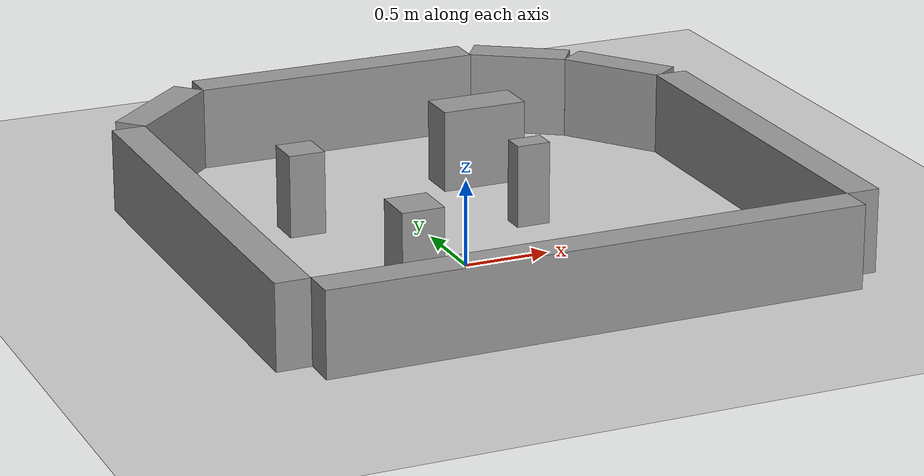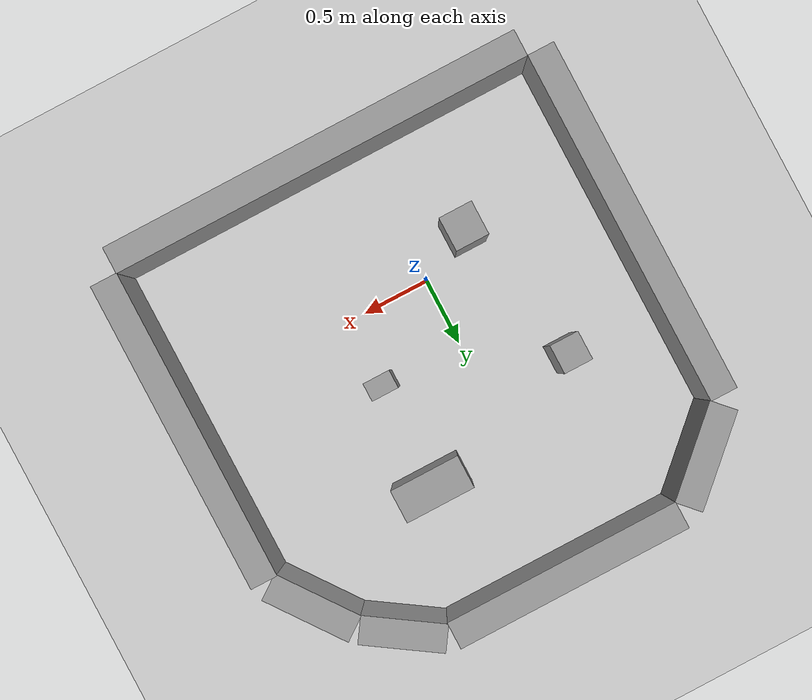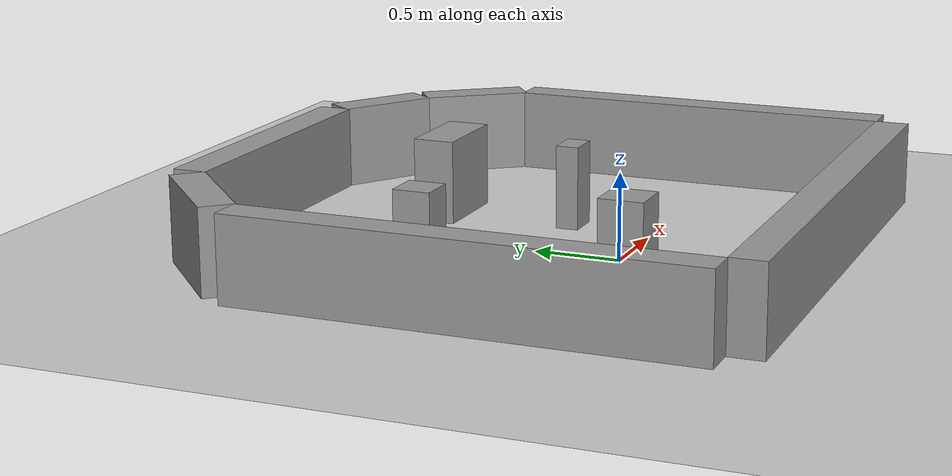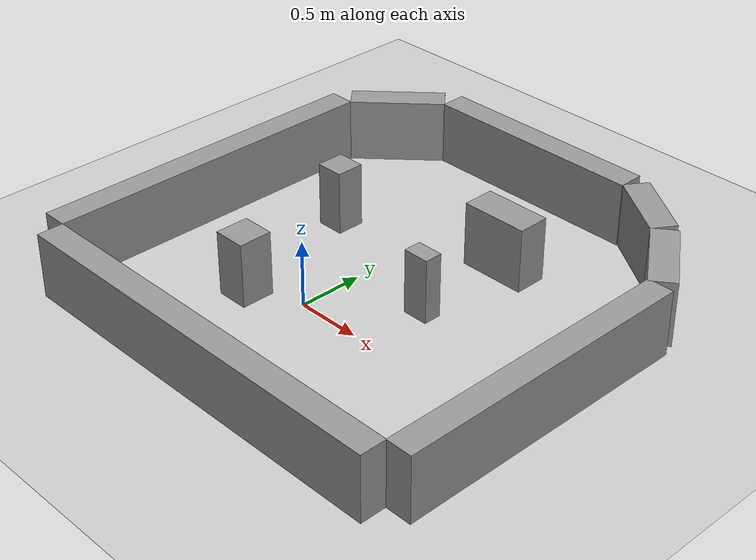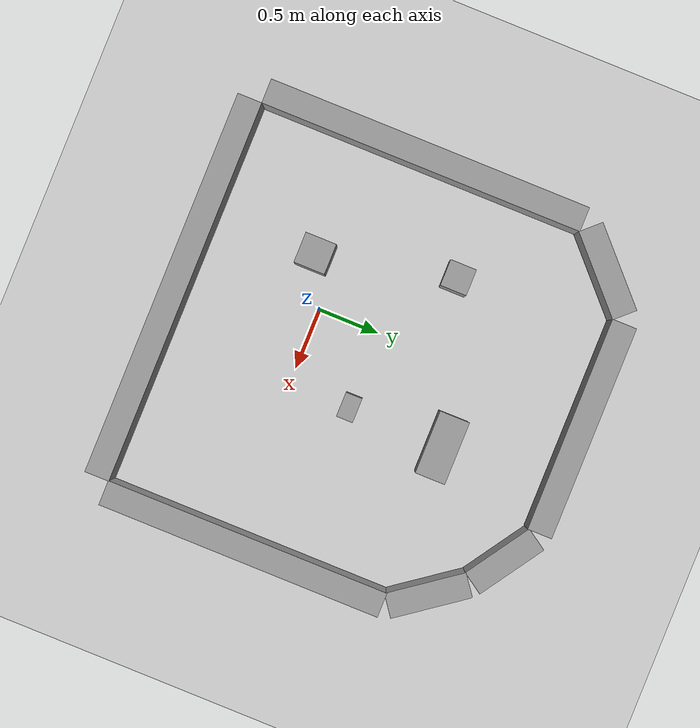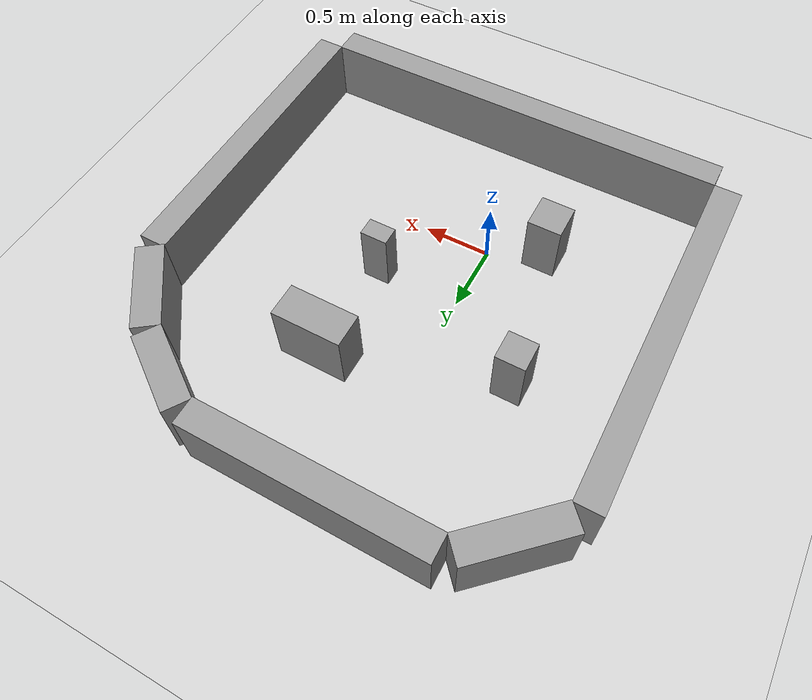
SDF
<sdf version="1.7">
 <world name="default">
  <model name="ground_plane">
   <static>1</static>
   <link name="link">
    <collision name="collision">
     <geometry><plane><normal>0 0 1</normal><size>100 100</size></plane></geometry>
     <surface>
      <contact><collide_bitmask>65535</collide_bitmask></contact>
      <friction><ode><mu>100</mu><mu2>50</mu2></ode></friction>
     </surface>
    </collision>
    <visual name="visual">
     <cast_shadows>0</cast_shadows>
     <geometry><plane><normal>0 0 1</normal><size>100 100</size></plane></geometry>
     <material>
      <script><uri>file://media/materials/scripts/gazebo.material</uri><name>Gazebo/Grey</name></script>
     </material>
    </visual>
   </link>
  </model>
  <gravity>0 0 -9.8</gravity>
  <magnetic_field>6e-06 2.3e-05 -4.2e-05</magnetic_field>
  <atmosphere type="adiabatic"/>
  <physics type="ode">
   <max_step_size>0.001</max_step_size>
   <real_time_factor>1</real_time_factor>
   <real_time_update_rate>1000</real_time_update_rate>
  </physics>
  <scene><ambient>0.4 0.4 0.4 1</ambient><background>0.7 0.7 0.7 1</background><shadows>1</shadows></scene>
  <spherical_coordinates>
   <surface_model>EARTH_WGS84</surface_model>
   <latitude_deg>0</latitude_deg>
   <longitude_deg>0</longitude_deg>
   <elevation>0</elevation>
   <heading_deg>0</heading_deg>
  </spherical_coordinates>
  <light name="sun" type="directional">
   <pose>-8.52777 3.22509 10 0 -0 0</pose>
   <diffuse>0.8 0.8 0.8 1</diffuse>
   <specular>0.2 0.2 0.2 1</specular>
   <attenuation>
    <range>1000</range>
    <constant>0.9</constant>
    <linear>0.01</linear>
    <quadratic>0.001</quadratic>
   </attenuation>
   <direction>-0.5 0.1 -0.9</direction>
   <spot><inner_angle>0</inner_angle><outer_angle>0</outer_angle><falloff>0</falloff></spot>
  </light>
  <plugin name="collision_map_creator" filename="build/libcollision_map_creator.so"/>
  <model name="SztakiFull_without_0">
   <link name="link_0">
    <inertial>
     <mass>1</mass>
     <inertia>
      <ixx>0.166667</ixx>
      <ixy>0</ixy>
      <ixz>0</ixz>
      <iyy>0.166667</iyy>
      <iyz>0</iyz>
      <izz>0.166667</izz>
     </inertia>
    </inertial>
    <pose>-1.78542 -0.681461 -0.001058 0 0 -1.5708</pose>
    <visual name="visual">
     <geometry><box><size>2.65 0.2 0.5</size></box></geometry>
     <material>
      <lighting>1</lighting>
      <script><uri>file://media/materials/scripts/gazebo.material</uri><name>Gazebo/Grey</name></script>
      <shader type="pixel"><normal_map>__default__</normal_map></shader>
      <ambient>0.3 0.3 0.3 1</ambient>
      <diffuse>0.7 0.7 0.7 1</diffuse>
      <specular>0.01 0.01 0.01 1</specular>
      <emissive>0 0 0 1</emissive>
     </material>
    </visual>
    <collision name="collision">
     <geometry><box><size>2.65 0.2 0.5</size></box></geometry>
     <surface>
      <friction>
       <ode><mu>1</mu><mu2>1</mu2><fdir1>0 0 0</fdir1><slip1>0</slip1><slip2>0</slip2></ode>
       <torsional>
        <coefficient>1</coefficient>
        <patch_radius>0</patch_radius>
        <surface_radius>0</surface_radius>
        <use_patch_radius>1</use_patch_radius>
        <ode><slip>0</slip></ode>
       </torsional>
      </friction>
      <bounce><restitution_coefficient>0</restitution_coefficient><threshold>1e+06</threshold></bounce>
      <contact>
       <collide_without_contact>0</collide_without_contact>
       <collide_without_contact_bitmask>1</collide_without_contact_bitmask>
       <collide_bitmask>1</collide_bitmask>
       <ode>
        <soft_cfm>0</soft_cfm>
        <soft_erp>0.2</soft_erp>
        <kp>1e+13</kp>
        <kd>1</kd>
        <max_vel>0.01</max_vel>
        <min_depth>0</min_depth>
       </ode>
       <bullet>
        <split_impulse>1</split_impulse>
        <split_impulse_penetration_threshold>-0.01</split_impulse_penetration_threshold>
        <soft_cfm>0</soft_cfm>
        <soft_erp>0.2</soft_erp>
        <kp>1e+13</kp>
        <kd>1</kd>
       </bullet>
      </contact>
     </surface>
    </collision>
   </link>
   <link name="link_0_clone">
    <inertial>
     <mass>1</mass>
     <inertia>
      <ixx>0.166667</ixx>
      <ixy>0</ixy>
      <ixz>0</ixz>
      <iyy>0.166667</iyy>
      <iyz>0</iyz>
      <izz>0.166667</izz>
     </inertia>
    </inertial>
    <pose>-0.11042 -2.10451 0.000176 0 -0 0</pose>
    <visual name="visual">
     <geometry><box><size>3.15 0.2 0.5</size></box></geometry>
     <material>
      <lighting>1</lighting>
      <script><uri>file://media/materials/scripts/gazebo.material</uri><name>Gazebo/Grey</name></script>
      <shader type="pixel"><normal_map>__default__</normal_map></shader>
      <ambient>0.3 0.3 0.3 1</ambient>
      <diffuse>0.7 0.7 0.7 1</diffuse>
      <specular>0.01 0.01 0.01 1</specular>
      <emissive>0 0 0 1</emissive>
     </material>
    </visual>
    <collision name="collision">
     <geometry><box><size>3.15 0.2 0.5</size></box></geometry>
     <surface>
      <friction>
       <ode><mu>1</mu><mu2>1</mu2><fdir1>0 0 0</fdir1><slip1>0</slip1><slip2>0</slip2></ode>
       <torsional>
        <coefficient>1</coefficient>
        <patch_radius>0</patch_radius>
        <surface_radius>0</surface_radius>
        <use_patch_radius>1</use_patch_radius>
        <ode><slip>0</slip></ode>
       </torsional>
      </friction>
      <bounce><restitution_coefficient>0</restitution_coefficient><threshold>1e+06</threshold></bounce>
      <contact>
       <collide_without_contact>0</collide_without_contact>
       <collide_without_contact_bitmask>1</collide_without_contact_bitmask>
       <collide_bitmask>1</collide_bitmask>
       <ode>
        <soft_cfm>0</soft_cfm>
        <soft_erp>0.2</soft_erp>
        <kp>1e+13</kp>
        <kd>1</kd>
        <max_vel>0.01</max_vel>
        <min_depth>0</min_depth>
       </ode>
       <bullet>
        <split_impulse>1</split_impulse>
        <split_impulse_penetration_threshold>-0.01</split_impulse_penetration_threshold>
        <soft_cfm>0</soft_cfm>
        <soft_erp>0.2</soft_erp>
        <kp>1e+13</kp>
        <kd>1</kd>
       </bullet>
      </contact>
     </surface>
    </collision>
   </link>
   <link name="link_0_clone_0_clone">
    <inertial>
     <mass>1</mass>
     <inertia>
      <ixx>0.166667</ixx>
      <ixy>0</ixy>
      <ixz>0</ixz>
      <iyy>0.166667</iyy>
      <iyz>0</iyz>
      <izz>0.166667</izz>
     </inertia>
    </inertial>
    <pose>0.240419 -0.497488 -0.001058 0 0 -1.5708</pose>
    <visual name="visual">
     <geometry><box><size>0.135 0.2 0.5</size></box></geometry>
     <material>
      <lighting>1</lighting>
      <script><uri>file://media/materials/scripts/gazebo.material</uri><name>Gazebo/Grey</name></script>
      <shader type="pixel"><normal_map>__default__</normal_map></shader>
      <ambient>0.3 0.3 0.3 1</ambient>
      <diffuse>0.7 0.7 0.7 1</diffuse>
      <specular>0.01 0.01 0.01 1</specular>
      <emissive>0 0 0 1</emissive>
     </material>
    </visual>
    <collision name="collision">
     <geometry><box><size>0.135 0.2 0.5</size></box></geometry>
     <surface>
      <friction>
       <ode><mu>1</mu><mu2>1</mu2><fdir1>0 0 0</fdir1><slip1>0</slip1><slip2>0</slip2></ode>
       <torsional>
        <coefficient>1</coefficient>
        <patch_radius>0</patch_radius>
        <surface_radius>0</surface_radius>
        <use_patch_radius>1</use_patch_radius>
        <ode><slip>0</slip></ode>
       </torsional>
      </friction>
      <bounce><restitution_coefficient>0</restitution_coefficient><threshold>1e+06</threshold></bounce>
      <contact>
       <collide_without_contact>0</collide_without_contact>
       <collide_without_contact_bitmask>1</collide_without_contact_bitmask>
       <collide_bitmask>1</collide_bitmask>
       <ode>
        <soft_cfm>0</soft_cfm>
        <soft_erp>0.2</soft_erp>
        <kp>1e+13</kp>
        <kd>1</kd>
        <max_vel>0.01</max_vel>
        <min_depth>0</min_depth>
       </ode>
       <bullet>
        <split_impulse>1</split_impulse>
        <split_impulse_penetration_threshold>-0.01</split_impulse_penetration_threshold>
        <soft_cfm>0</soft_cfm>
        <soft_erp>0.2</soft_erp>
        <kp>1e+13</kp>
        <kd>1</kd>
       </bullet>
      </contact>
     </surface>
    </collision>
   </link>
   <link name="link_0_clone_0_clone_0">
    <inertial>
     <mass>1</mass>
     <inertia>
      <ixx>0.166667</ixx>
      <ixy>0</ixy>
      <ixz>0</ixz>
      <iyy>0.166667</iyy>
      <iyz>0</iyz>
      <izz>0.166667</izz>
     </inertia>
    </inertial>
    <pose>-0.76421 -1.18838 -0.001058 0 0 -1.5708</pose>
    <visual name="visual">
     <geometry><box><size>0.255 0.25 0.5</size></box></geometry>
     <material>
      <lighting>1</lighting>
      <script><uri>file://media/materials/scripts/gazebo.material</uri><name>Gazebo/Grey</name></script>
      <shader type="pixel"><normal_map>__default__</normal_map></shader>
      <ambient>0.3 0.3 0.3 1</ambient>
      <diffuse>0.7 0.7 0.7 1</diffuse>
      <specular>0.01 0.01 0.01 1</specular>
      <emissive>0 0 0 1</emissive>
     </material>
    </visual>
    <collision name="collision">
     <geometry><box><size>0.255 0.25 0.5</size></box></geometry>
     <surface>
      <friction>
       <ode><mu>1</mu><mu2>1</mu2><fdir1>0 0 0</fdir1><slip1>0</slip1><slip2>0</slip2></ode>
       <torsional>
        <coefficient>1</coefficient>
        <patch_radius>0</patch_radius>
        <surface_radius>0</surface_radius>
        <use_patch_radius>1</use_patch_radius>
        <ode><slip>0</slip></ode>
       </torsional>
      </friction>
      <bounce><restitution_coefficient>0</restitution_coefficient><threshold>1e+06</threshold></bounce>
      <contact>
       <collide_without_contact>0</collide_without_contact>
       <collide_without_contact_bitmask>1</collide_without_contact_bitmask>
       <collide_bitmask>1</collide_bitmask>
       <ode>
        <soft_cfm>0</soft_cfm>
        <soft_erp>0.2</soft_erp>
        <kp>1e+13</kp>
        <kd>1</kd>
        <max_vel>0.01</max_vel>
        <min_depth>0</min_depth>
       </ode>
       <bullet>
        <split_impulse>1</split_impulse>
        <split_impulse_penetration_threshold>-0.01</split_impulse_penetration_threshold>
        <soft_cfm>0</soft_cfm>
        <soft_erp>0.2</soft_erp>
        <kp>1e+13</kp>
        <kd>1</kd>
       </bullet>
      </contact>
     </surface>
    </collision>
   </link>
   <link name="link_0_clone_0_clone_1">
    <inertial>
     <mass>1</mass>
     <inertia>
      <ixx>0.166667</ixx>
      <ixy>0</ixy>
      <ixz>0</ixz>
      <iyy>0.166667</iyy>
      <iyz>0</iyz>
      <izz>0.166667</izz>
     </inertia>
    </inertial>
    <pose>-1.00514 -0.0923 -0.001058 0 0 -1.5708</pose>
    <visual name="visual">
     <geometry><box><size>0.215 0.215 0.5</size></box></geometry>
     <material>
      <lighting>1</lighting>
      <script><uri>file://media/materials/scripts/gazebo.material</uri><name>Gazebo/Grey</name></script>
      <shader type="pixel"><normal_map>__default__</normal_map></shader>
      <ambient>0.3 0.3 0.3 1</ambient>
      <diffuse>0.7 0.7 0.7 1</diffuse>
      <specular>0.01 0.01 0.01 1</specular>
      <emissive>0 0 0 1</emissive>
     </material>
    </visual>
    <collision name="collision">
     <geometry><box><size>0.215 0.215 0.5</size></box></geometry>
     <surface>
      <friction>
       <ode><mu>1</mu><mu2>1</mu2><fdir1>0 0 0</fdir1><slip1>0</slip1><slip2>0</slip2></ode>
       <torsional>
        <coefficient>1</coefficient>
        <patch_radius>0</patch_radius>
        <surface_radius>0</surface_radius>
        <use_patch_radius>1</use_patch_radius>
        <ode><slip>0</slip></ode>
       </torsional>
      </friction>
      <bounce><restitution_coefficient>0</restitution_coefficient><threshold>1e+06</threshold></bounce>
      <contact>
       <collide_without_contact>0</collide_without_contact>
       <collide_without_contact_bitmask>1</collide_without_contact_bitmask>
       <collide_bitmask>1</collide_bitmask>
       <ode>
        <soft_cfm>0</soft_cfm>
        <soft_erp>0.2</soft_erp>
        <kp>1e+13</kp>
        <kd>1</kd>
        <max_vel>0.01</max_vel>
        <min_depth>0</min_depth>
       </ode>
       <bullet>
        <split_impulse>1</split_impulse>
        <split_impulse_penetration_threshold>-0.01</split_impulse_penetration_threshold>
        <soft_cfm>0</soft_cfm>
        <soft_erp>0.2</soft_erp>
        <kp>1e+13</kp>
        <kd>1</kd>
       </bullet>
      </contact>
     </surface>
    </collision>
   </link>
   <link name="link_0_clone_0_clone_2">
    <inertial>
     <mass>1</mass>
     <inertia>
      <ixx>0.166667</ixx>
      <ixy>0</ixy>
      <ixz>0</ixz>
      <iyy>0.166667</iyy>
      <iyz>0</iyz>
      <izz>0.166667</izz>
     </inertia>
    </inertial>
    <pose>0.259128 0.285975 -0.001058 0 -0 3.14159</pose>
    <visual name="visual">
     <geometry><box><size>0.515 0.245 0.5</size></box></geometry>
     <material>
      <lighting>1</lighting>
      <script><uri>file://media/materials/scripts/gazebo.material</uri><name>Gazebo/Grey</name></script>
      <shader type="pixel"><normal_map>__default__</normal_map></shader>
      <ambient>0.3 0.3 0.3 1</ambient>
      <diffuse>0.7 0.7 0.7 1</diffuse>
      <specular>0.01 0.01 0.01 1</specular>
      <emissive>0 0 0 1</emissive>
     </material>
    </visual>
    <collision name="collision">
     <geometry><box><size>0.515 0.245 0.5</size></box></geometry>
     <surface>
      <friction>
       <ode><mu>1</mu><mu2>1</mu2><fdir1>0 0 0</fdir1><slip1>0</slip1><slip2>0</slip2></ode>
       <torsional>
        <coefficient>1</coefficient>
        <patch_radius>0</patch_radius>
        <surface_radius>0</surface_radius>
        <use_patch_radius>1</use_patch_radius>
        <ode><slip>0</slip></ode>
       </torsional>
      </friction>
      <bounce><restitution_coefficient>0</restitution_coefficient><threshold>1e+06</threshold></bounce>
      <contact>
       <collide_without_contact>0</collide_without_contact>
       <collide_without_contact_bitmask>1</collide_without_contact_bitmask>
       <collide_bitmask>1</collide_bitmask>
       <ode>
        <soft_cfm>0</soft_cfm>
        <soft_erp>0.2</soft_erp>
        <kp>1e+13</kp>
        <kd>1</kd>
        <max_vel>0.01</max_vel>
        <min_depth>0</min_depth>
       </ode>
       <bullet>
        <split_impulse>1</split_impulse>
        <split_impulse_penetration_threshold>-0.01</split_impulse_penetration_threshold>
        <soft_cfm>0</soft_cfm>
        <soft_erp>0.2</soft_erp>
        <kp>1e+13</kp>
        <kd>1</kd>
       </bullet>
      </contact>
     </surface>
    </collision>
   </link>
   <link name="link_0_clone_1">
    <inertial>
     <mass>1</mass>
     <inertia>
      <ixx>0.166667</ixx>
      <ixy>0</ixy>
      <ixz>0</ixz>
      <iyy>0.166667</iyy>
      <iyz>0</iyz>
      <izz>0.166667</izz>
     </inertia>
    </inertial>
    <pose>1.56077 -0.849151 0.000176 0 0 -1.5708</pose>
    <visual name="visual">
     <geometry><box><size>2.32 0.2 0.5</size></box></geometry>
     <material>
      <lighting>1</lighting>
      <script><uri>file://media/materials/scripts/gazebo.material</uri><name>Gazebo/Grey</name></script>
      <shader type="pixel"><normal_map>__default__</normal_map></shader>
      <ambient>0.3 0.3 0.3 1</ambient>
      <diffuse>0.7 0.7 0.7 1</diffuse>
      <specular>0.01 0.01 0.01 1</specular>
      <emissive>0 0 0 1</emissive>
     </material>
    </visual>
    <collision name="collision">
     <geometry><box><size>2.32 0.2 0.5</size></box></geometry>
     <surface>
      <friction>
       <ode><mu>1</mu><mu2>1</mu2><fdir1>0 0 0</fdir1><slip1>0</slip1><slip2>0</slip2></ode>
       <torsional>
        <coefficient>1</coefficient>
        <patch_radius>0</patch_radius>
        <surface_radius>0</surface_radius>
        <use_patch_radius>1</use_patch_radius>
        <ode><slip>0</slip></ode>
       </torsional>
      </friction>
      <bounce><restitution_coefficient>0</restitution_coefficient><threshold>1e+06</threshold></bounce>
      <contact>
       <collide_without_contact>0</collide_without_contact>
       <collide_without_contact_bitmask>1</collide_without_contact_bitmask>
       <collide_bitmask>1</collide_bitmask>
       <ode>
        <soft_cfm>0</soft_cfm>
        <soft_erp>0.2</soft_erp>
        <kp>1e+13</kp>
        <kd>1</kd>
        <max_vel>0.01</max_vel>
        <min_depth>0</min_depth>
       </ode>
       <bullet>
        <split_impulse>1</split_impulse>
        <split_impulse_penetration_threshold>-0.01</split_impulse_penetration_threshold>
        <soft_cfm>0</soft_cfm>
        <soft_erp>0.2</soft_erp>
        <kp>1e+13</kp>
        <kd>1</kd>
       </bullet>
      </contact>
     </surface>
    </collision>
   </link>
   <link name="link_0_clone_2">
    <inertial>
     <mass>2.36279</mass>
     <inertia>
      <ixx>0.0571006</ixx>
      <ixy>0</ixy>
      <ixz>0</ixz>
      <iyy>0.651171</iyy>
      <iyz>0</iyz>
      <izz>0.609822</izz>
     </inertia>
    </inertial>
    <pose>-0.279781 1.23088 0.000176 0 -0 0</pose>
    <visual name="visual">
     <geometry><box><size>1.74847 0.2 0.5</size></box></geometry>
     <material>
      <lighting>1</lighting>
      <script><uri>file://media/materials/scripts/gazebo.material</uri><name>Gazebo/Grey</name></script>
      <shader type="pixel"><normal_map>__default__</normal_map></shader>
      <ambient>0.3 0.3 0.3 1</ambient>
      <diffuse>0.7 0.7 0.7 1</diffuse>
      <specular>0.01 0.01 0.01 1</specular>
      <emissive>0 0 0 1</emissive>
     </material>
    </visual>
    <collision name="collision">
     <geometry><box><size>1.74847 0.2 0.5</size></box></geometry>
     <surface>
      <friction>
       <ode><mu>1</mu><mu2>1</mu2><fdir1>0 0 0</fdir1><slip1>0</slip1><slip2>0</slip2></ode>
       <torsional>
        <coefficient>1</coefficient>
        <patch_radius>0</patch_radius>
        <surface_radius>0</surface_radius>
        <use_patch_radius>1</use_patch_radius>
        <ode><slip>0</slip></ode>
       </torsional>
      </friction>
      <bounce><restitution_coefficient>0</restitution_coefficient><threshold>1e+06</threshold></bounce>
      <contact>
       <collide_without_contact>0</collide_without_contact>
       <collide_without_contact_bitmask>1</collide_without_contact_bitmask>
       <collide_bitmask>1</collide_bitmask>
       <ode>
        <soft_cfm>0</soft_cfm>
        <soft_erp>0.2</soft_erp>
        <kp>1e+13</kp>
        <kd>1</kd>
        <max_vel>0.01</max_vel>
        <min_depth>0</min_depth>
       </ode>
       <bullet>
        <split_impulse>1</split_impulse>
        <split_impulse_penetration_threshold>-0.01</split_impulse_penetration_threshold>
        <soft_cfm>0</soft_cfm>
        <soft_erp>0.2</soft_erp>
        <kp>1e+13</kp>
        <kd>1</kd>
       </bullet>
      </contact>
     </surface>
    </collision>
   </link>
   <link name="link_0_clone_2_clone">
    <inertial>
     <mass>1.08683</mass>
     <inertia>
      <ixx>0.0262651</ixx>
      <ixy>0</ixy>
      <ixz>0</ixz>
      <iyy>0.0611552</iyy>
      <iyz>0</iyz>
      <izz>0.0421357</izz>
     </inertia>
    </inertial>
    <pose>1.35723 0.612433 0.000176 0 0 -0.937811</pose>
    <visual name="visual">
     <geometry><box><size>0.652098 0.2 0.5</size></box></geometry>
     <material>
      <lighting>1</lighting>
      <script><uri>file://media/materials/scripts/gazebo.material</uri><name>Gazebo/Grey</name></script>
      <shader type="pixel"><normal_map>__default__</normal_map></shader>
      <ambient>0.3 0.3 0.3 1</ambient>
      <diffuse>0.7 0.7 0.7 1</diffuse>
      <specular>0.01 0.01 0.01 1</specular>
      <emissive>0 0 0 1</emissive>
     </material>
    </visual>
    <collision name="collision">
     <geometry><box><size>0.652098 0.2 0.5</size></box></geometry>
     <surface>
      <friction>
       <ode><mu>1</mu><mu2>1</mu2><fdir1>0 0 0</fdir1><slip1>0</slip1><slip2>0</slip2></ode>
       <torsional>
        <coefficient>1</coefficient>
        <patch_radius>0</patch_radius>
        <surface_radius>0</surface_radius>
        <use_patch_radius>1</use_patch_radius>
        <ode><slip>0</slip></ode>
       </torsional>
      </friction>
      <bounce><restitution_coefficient>0</restitution_coefficient><threshold>1e+06</threshold></bounce>
      <contact>
       <collide_without_contact>0</collide_without_contact>
       <collide_without_contact_bitmask>1</collide_without_contact_bitmask>
       <collide_bitmask>1</collide_bitmask>
       <ode>
        <soft_cfm>0</soft_cfm>
        <soft_erp>0.2</soft_erp>
        <kp>1e+13</kp>
        <kd>1</kd>
        <max_vel>0.01</max_vel>
        <min_depth>0</min_depth>
       </ode>
       <bullet>
        <split_impulse>1</split_impulse>
        <split_impulse_penetration_threshold>-0.01</split_impulse_penetration_threshold>
        <soft_cfm>0</soft_cfm>
        <soft_erp>0.2</soft_erp>
        <kp>1e+13</kp>
        <kd>1</kd>
       </bullet>
      </contact>
     </surface>
    </collision>
   </link>
   <link name="link_0_clone_2_clone_clone">
    <inertial>
     <mass>1</mass>
     <inertia>
      <ixx>0.166667</ixx>
      <ixy>0</ixy>
      <ixz>0</ixz>
      <iyy>0.166667</iyy>
      <iyz>0</iyz>
      <izz>0.166667</izz>
     </inertia>
    </inertial>
    <pose>0.892818 1.05939 0.000176 0 0 -0.58656</pose>
    <visual name="visual">
     <geometry><box><size>0.6 0.2 0.5</size></box></geometry>
     <material>
      <lighting>1</lighting>
      <script><uri>file://media/materials/scripts/gazebo.material</uri><name>Gazebo/Grey</name></script>
      <shader type="pixel"><normal_map>__default__</normal_map></shader>
      <ambient>0.3 0.3 0.3 1</ambient>
      <diffuse>0.7 0.7 0.7 1</diffuse>
      <specular>0.01 0.01 0.01 1</specular>
      <emissive>0 0 0 1</emissive>
     </material>
    </visual>
    <collision name="collision">
     <geometry><box><size>0.6 0.2 0.5</size></box></geometry>
     <surface>
      <friction>
       <ode><mu>1</mu><mu2>1</mu2><fdir1>0 0 0</fdir1><slip1>0</slip1><slip2>0</slip2></ode>
       <torsional>
        <coefficient>1</coefficient>
        <patch_radius>0</patch_radius>
        <surface_radius>0</surface_radius>
        <use_patch_radius>1</use_patch_radius>
        <ode><slip>0</slip></ode>
       </torsional>
      </friction>
      <bounce><restitution_coefficient>0</restitution_coefficient><threshold>1e+06</threshold></bounce>
      <contact>
       <collide_without_contact>0</collide_without_contact>
       <collide_without_contact_bitmask>1</collide_without_contact_bitmask>
       <collide_bitmask>1</collide_bitmask>
       <ode>
        <soft_cfm>0</soft_cfm>
        <soft_erp>0.2</soft_erp>
        <kp>1e+13</kp>
        <kd>1</kd>
        <max_vel>0.01</max_vel>
        <min_depth>0</min_depth>
       </ode>
       <bullet>
        <split_impulse>1</split_impulse>
        <split_impulse_penetration_threshold>-0.01</split_impulse_penetration_threshold>
        <soft_cfm>0</soft_cfm>
        <soft_erp>0.2</soft_erp>
        <kp>1e+13</kp>
        <kd>1</kd>
       </bullet>
      </contact>
     </surface>
    </collision>
   </link>
   <link name="link_0_clone_2_clone_clone_clone">
    <inertial>
     <mass>1.21734</mass>
     <inertia>
      <ixx>0.0294191</ixx>
      <ixy>0</ixy>
      <ixz>0</ixz>
      <iyy>0.0794808</iyy>
      <iyz>0</iyz>
      <izz>0.0581773</izz>
     </inertia>
    </inertial>
    <pose>-1.48348 0.957029 0.000176 0 0 -2.38978</pose>
    <visual name="visual">
     <geometry><box><size>0.730401 0.2 0.5</size></box></geometry>
     <material>
      <lighting>1</lighting>
      <script><uri>file://media/materials/scripts/gazebo.material</uri><name>Gazebo/Grey</name></script>
      <shader type="pixel"><normal_map>__default__</normal_map></shader>
      <ambient>0.3 0.3 0.3 1</ambient>
      <diffuse>0.7 0.7 0.7 1</diffuse>
      <specular>0.01 0.01 0.01 1</specular>
      <emissive>0 0 0 1</emissive>
     </material>
    </visual>
    <collision name="collision">
     <geometry><box><size>0.730401 0.2 0.5</size></box></geometry>
     <surface>
      <friction>
       <ode><mu>1</mu><mu2>1</mu2><fdir1>0 0 0</fdir1><slip1>0</slip1><slip2>0</slip2></ode>
       <torsional>
        <coefficient>1</coefficient>
        <patch_radius>0</patch_radius>
        <surface_radius>0</surface_radius>
        <use_patch_radius>1</use_patch_radius>
        <ode><slip>0</slip></ode>
       </torsional>
      </friction>
      <bounce><restitution_coefficient>0</restitution_coefficient><threshold>1e+06</threshold></bounce>
      <contact>
       <collide_without_contact>0</collide_without_contact>
       <collide_without_contact_bitmask>1</collide_without_contact_bitmask>
       <collide_bitmask>1</collide_bitmask>
       <ode>
        <soft_cfm>0</soft_cfm>
        <soft_erp>0.2</soft_erp>
        <kp>1e+13</kp>
        <kd>1</kd>
        <max_vel>0.01</max_vel>
        <min_depth>0</min_depth>
       </ode>
       <bullet>
        <split_impulse>1</split_impulse>
        <split_impulse_penetration_threshold>-0.01</split_impulse_penetration_threshold>
        <soft_cfm>0</soft_cfm>
        <soft_erp>0.2</soft_erp>
        <kp>1e+13</kp>
        <kd>1</kd>
       </bullet>
      </contact>
     </surface>
    </collision>
   </link>
   <static>0</static>
   <pose>0.378306 1.00734 0.237539 0 -0 0</pose>
  </model>
 </world>
</sdf>
